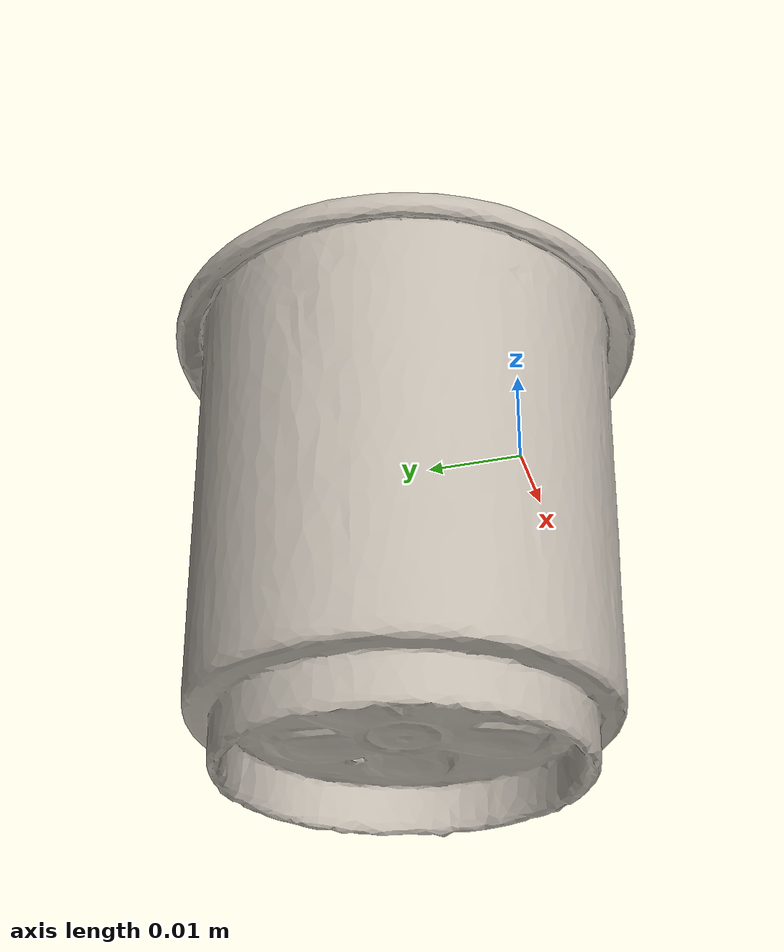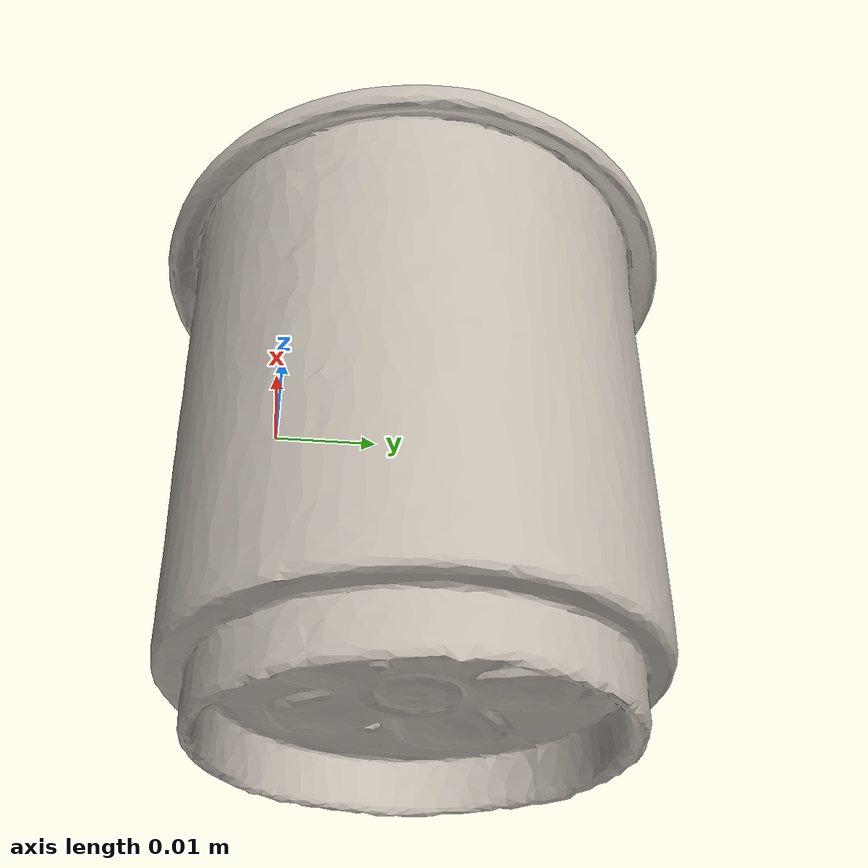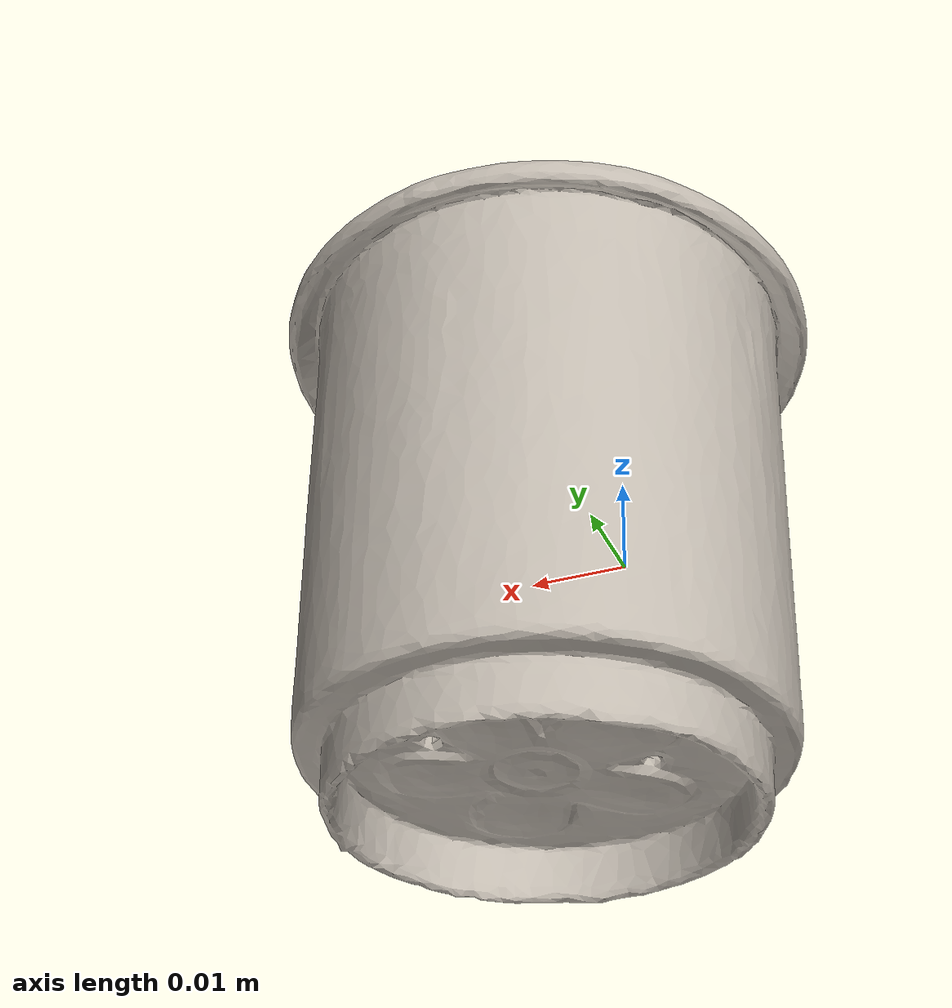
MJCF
<mujoco model="bread">
  <asset>
    <mesh file="nontextured.stl" name="obj_mesh" scale="0.8 0.8 0.8"/>
    <texture file="../../../../../textures/bread.png" type="2d" name="tex-bread" />
    <material name="bread" reflectance="0.7" texrepeat="15 15" texture="tex-bread" texuniform="true"/>
  </asset>
  <worldbody>
    <body>
      <body name="collision">
        <geom pos="0.015507000000000002 0.06751850000000001 -0.032726" mesh="obj_mesh" type="mesh" solimp="0.998 0.998 0.001" solref="0.001 1" density="50" friction="0.95 0.3 0.1"  material="bread" group="1" condim="4"/>
      </body>
      <body name="visual">
        <geom pos="0.015507000000000002 0.06751850000000001 -0.032726" mesh="obj_mesh" type="mesh" material="bread"  conaffinity="0" contype="0"  group="0" mass="0.0001"/>
        <geom pos="0.015507000000000002 0.06751850000000001 -0.032726" mesh="obj_mesh" type="mesh" material="bread"  conaffinity="0" contype="0"  group="1" mass="0.0001"/>
      </body>
      <site rgba="0 0 0 0" size="0.005" pos="0 0 -0.033277999999999995" name="bottom_site"/>
      <site rgba="0 0 0 0" size="0.005" pos="0 0 0.033277999999999995" name="top_site"/>
      <site rgba="0 0 0 0" size="0.005" pos="0.032487 0.032551500000000004 0.033277999999999995" name="horizontal_radius_site"/>
    </body>
  </worldbody>
</mujoco>
